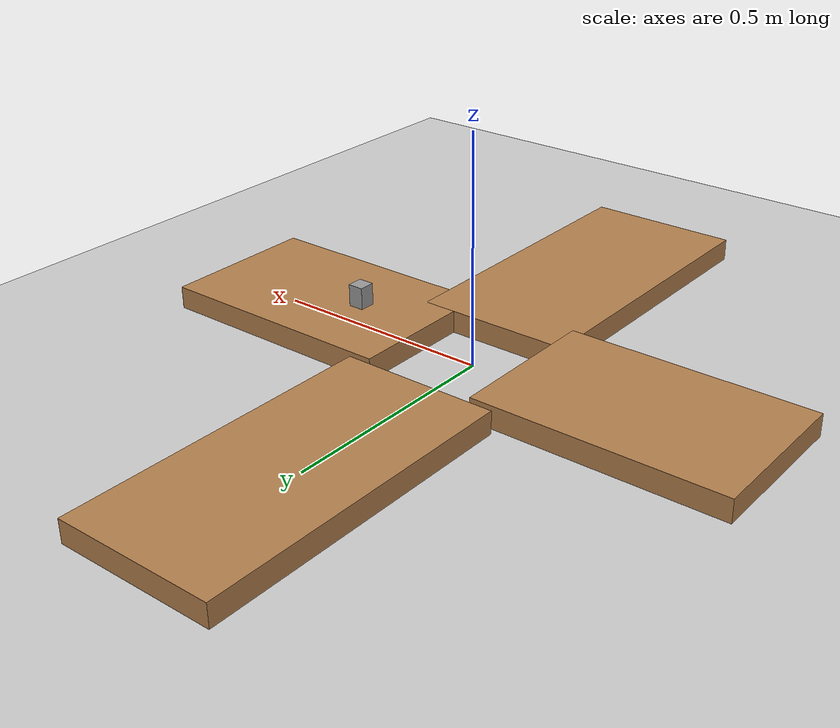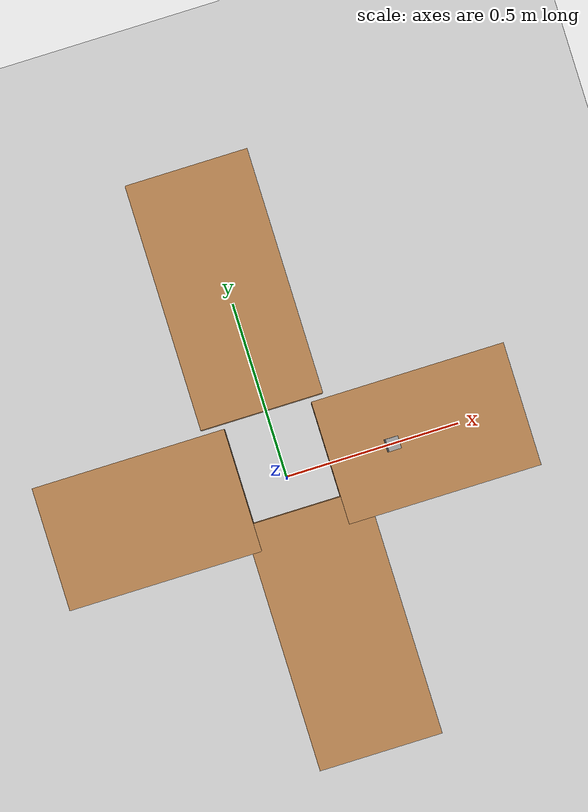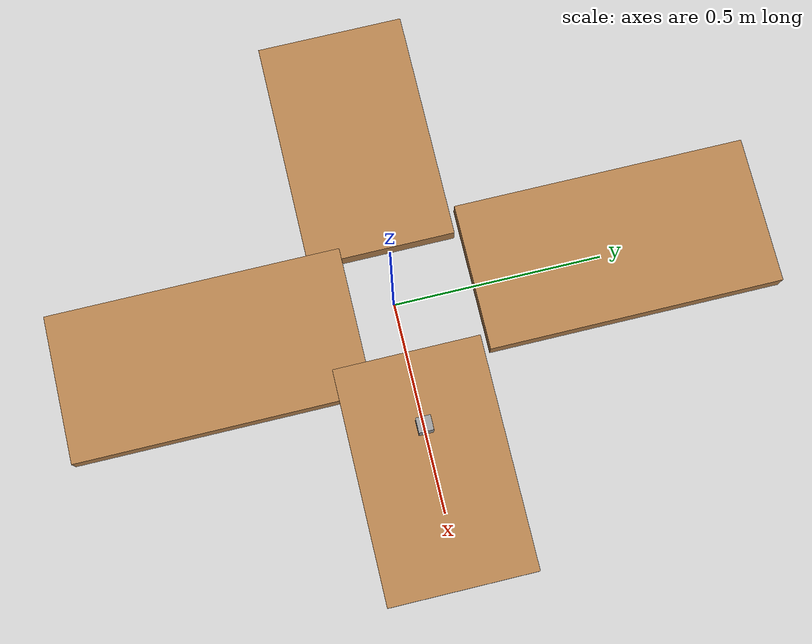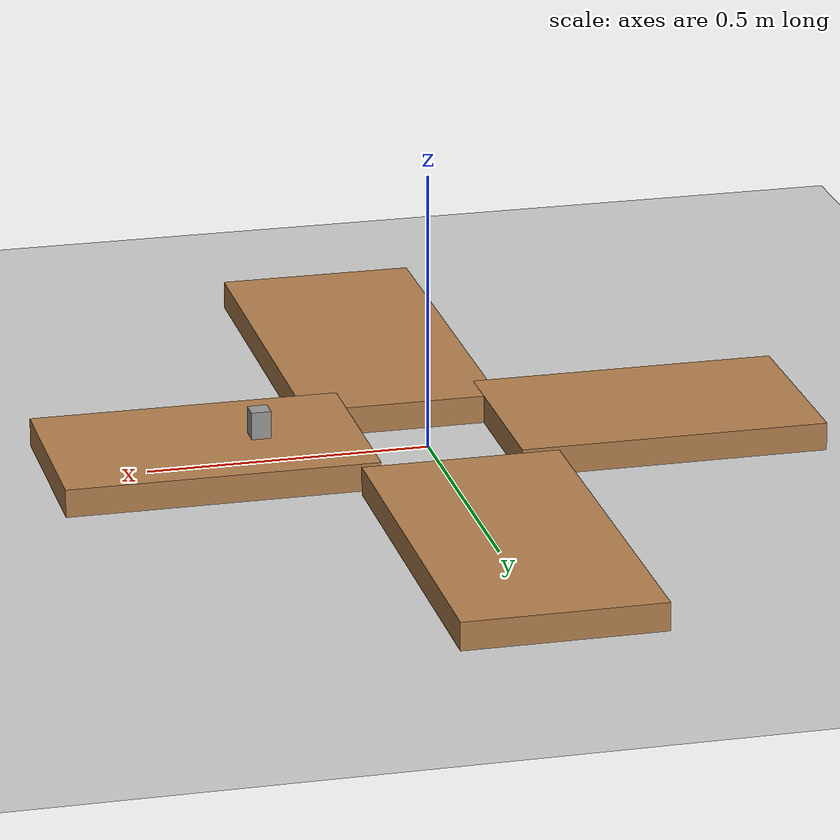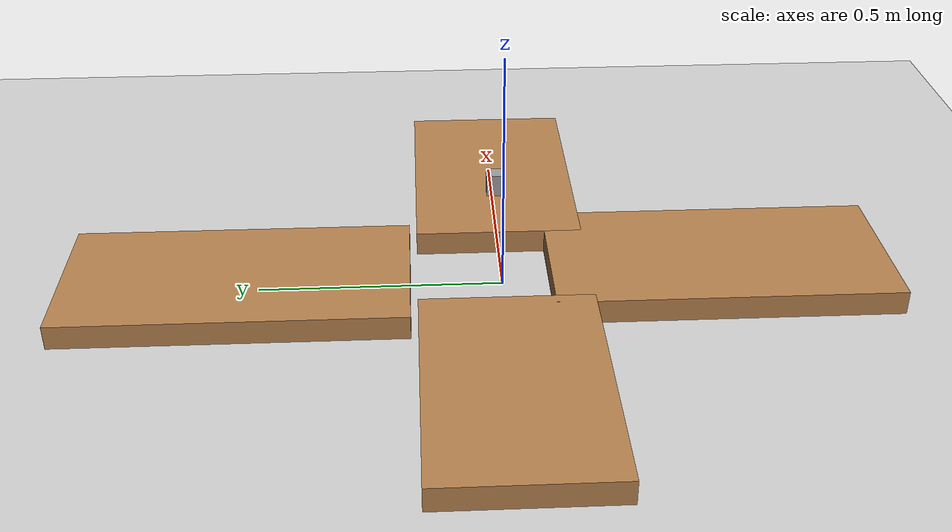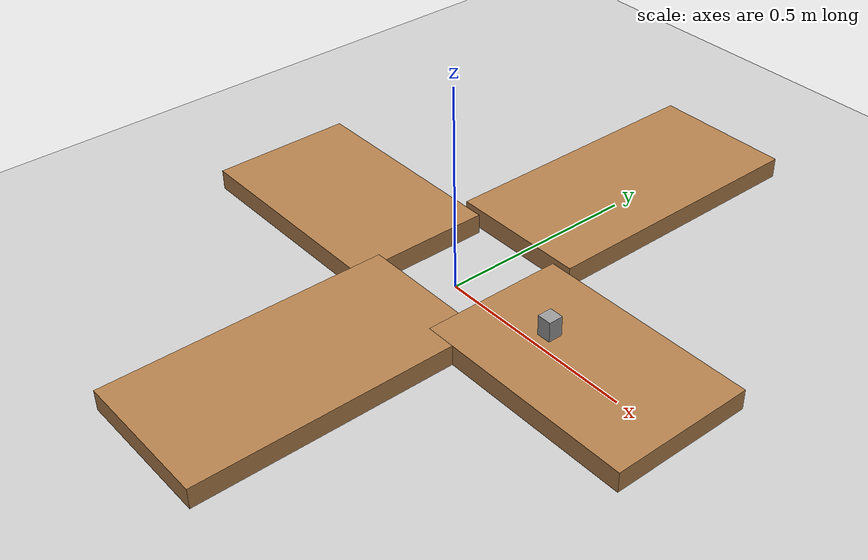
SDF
<sdf version="1.7">
 <world name="default">
  <light name="sun" type="directional">
   <pose>0 0 10 0 -0 0</pose>
   <diffuse>0.8 0.8 0.8 1</diffuse>
   <specular>0.2 0.2 0.2 1</specular>
   <attenuation>
    <range>1000</range>
    <constant>0.9</constant>
    <linear>0.01</linear>
    <quadratic>0.001</quadratic>
   </attenuation>
   <direction>-0.5 0.1 -0.9</direction>
   <spot><inner_angle>0</inner_angle><outer_angle>0</outer_angle><falloff>0</falloff></spot>
  </light>
  <model name="ground_plane">
   <static>1</static>
   <link name="link">
    <collision name="collision">
     <geometry><plane><normal>0 0 1</normal><size>100 100</size></plane></geometry>
     <surface>
      <contact><collide_bitmask>65535</collide_bitmask></contact>
      <friction><ode><mu>100</mu><mu2>50</mu2></ode></friction>
     </surface>
    </collision>
    <visual name="visual">
     <cast_shadows>0</cast_shadows>
     <geometry><plane><normal>0 0 1</normal><size>100 100</size></plane></geometry>
     <material>
      <script><uri>file://media/materials/scripts/gazebo.material</uri><name>Gazebo/Grey</name></script>
     </material>
    </visual>
   </link>
  </model>
  <physics type="ode">
   <real_time_update_rate>1000</real_time_update_rate>
   <max_step_size>0.001</max_step_size>
   <real_time_factor>1</real_time_factor>
   <ode>
    <solver>
     <type>quick</type>
     <iters>150</iters>
     <precon_iters>0</precon_iters>
     <sor>1.4</sor>
     <use_dynamic_moi_rescaling>1</use_dynamic_moi_rescaling>
    </solver>
    <constraints>
     <cfm>1e-05</cfm>
     <erp>0.2</erp>
     <contact_max_correcting_vel>2000</contact_max_correcting_vel>
     <contact_surface_layer>0.01</contact_surface_layer>
    </constraints>
   </ode>
  </physics>
  <scene><ambient>0.4 0.4 0.4 1</ambient><background>0.7 0.7 0.7 1</background><shadows>1</shadows></scene>
  <gravity>0 0 -9.8</gravity>
  <magnetic_field>6e-06 2.3e-05 -4.2e-05</magnetic_field>
  <atmosphere type="adiabatic"/>
  <spherical_coordinates>
   <surface_model>EARTH_WGS84</surface_model>
   <latitude_deg>0</latitude_deg>
   <longitude_deg>0</longitude_deg>
   <elevation>0</elevation>
   <heading_deg>0</heading_deg>
  </spherical_coordinates>
  <model name="first">
   <pose>0 0.04705 0 0 -0 0</pose>
   <link name="Wall_0">
    <collision name="Wall_0_Collision">
     <geometry><box><size>0.55 0.35 0.05</size></box></geometry>
     <pose>0 0 0.025 0 -0 0</pose>
    </collision>
    <visual name="Wall_0_Visual">
     <pose>0 0 0.025 0 -0 0</pose>
     <geometry><box><size>0.55 0.35 0.05</size></box></geometry>
     <material>
      <script><uri>file://media/materials/scripts/gazebo.material</uri><name>Gazebo/Wood</name></script>
      <ambient>1 1 1 1</ambient>
     </material>
     <meta><layer>0</layer></meta>
    </visual>
    <pose>0.4 -0.04705 0 0 -0 0</pose>
   </link>
   <link name="Wall_5">
    <collision name="Wall_5_Collision">
     <geometry><box><size>0.55 0.35 0.05</size></box></geometry>
     <pose>0 0 0.025 0 -0 0</pose>
    </collision>
    <visual name="Wall_5_Visual">
     <pose>0 0 0.025 0 -0 0</pose>
     <geometry><box><size>0.55 0.35 0.05</size></box></geometry>
     <material>
      <script><uri>file://media/materials/scripts/gazebo.material</uri><name>Gazebo/Wood</name></script>
      <ambient>1 1 1 1</ambient>
     </material>
     <meta><layer>0</layer></meta>
    </visual>
    <pose>-0.4 -0.04705 0 0 -0 3.14159</pose>
   </link>
   <link name="Wall_7">
    <collision name="Wall_7_Collision">
     <geometry><box><size>0.700201 0.35 0.05</size></box></geometry>
     <pose>0 0 0.025 0 -0 0</pose>
    </collision>
    <visual name="Wall_7_Visual">
     <pose>0 0 0.025 0 -0 0</pose>
     <geometry><box><size>0.700201 0.35 0.05</size></box></geometry>
     <material>
      <script><uri>file://media/materials/scripts/gazebo.material</uri><name>Gazebo/Wood</name></script>
      <ambient>1 1 1 1</ambient>
     </material>
     <meta><layer>0</layer></meta>
    </visual>
    <pose>-0.012 0.49295 0 0 -0 1.5708</pose>
   </link>
   <link name="Wall_9">
    <collision name="Wall_9_Collision">
     <geometry><box><size>0.7 0.35 0.05</size></box></geometry>
     <pose>0 0 0.025 0 -0 0</pose>
    </collision>
    <visual name="Wall_9_Visual">
     <pose>0 0 0.025 0 -0 0</pose>
     <geometry><box><size>0.7 0.35 0.05</size></box></geometry>
     <material>
      <script><uri>file://media/materials/scripts/gazebo.material</uri><name>Gazebo/Wood</name></script>
      <ambient>1 1 1 1</ambient>
     </material>
     <meta><layer>0</layer></meta>
    </visual>
    <pose>0.024 -0.49305 0 0 -0 -1.5708</pose>
   </link>
   <static>1</static>
  </model>
  <model name="3rd">
   <link name="link_0">
    <inertial>
     <mass>0.3</mass>
     <inertia>
      <ixx>9.313e-05</ixx>
      <ixy>0</ixy>
      <ixz>0</ixz>
      <iyy>9.313e-05</iyy>
      <iyz>0</iyz>
      <izz>6.125e-05</izz>
     </inertia>
    </inertial>
    <visual name="visual">
     <geometry><box><size>0.035 0.035 0.05</size></box></geometry>
     <material>
      <lighting>1</lighting>
      <script><uri>file://media/materials/scripts/gazebo.material</uri><name>Gazebo/Grey</name></script>
      <shader type="pixel"><normal_map>__default__</normal_map></shader>
      <ambient>0.3 0.3 0.3 1</ambient>
      <diffuse>0.7 0.7 0.7 1</diffuse>
      <specular>0.01 0.01 0.01 1</specular>
      <emissive>0 0 0 1</emissive>
     </material>
    </visual>
    <collision name="collision">
     <geometry><box><size>0.035 0.035 0.05</size></box></geometry>
     <surface>
      <friction>
       <ode><mu>1</mu><mu2>1</mu2><fdir1>0 0 0</fdir1><slip1>0</slip1><slip2>0</slip2></ode>
       <torsional>
        <coefficient>1</coefficient>
        <patch_radius>0</patch_radius>
        <surface_radius>0</surface_radius>
        <use_patch_radius>1</use_patch_radius>
        <ode><slip>0</slip></ode>
       </torsional>
      </friction>
      <bounce><restitution_coefficient>0</restitution_coefficient><threshold>1e+06</threshold></bounce>
      <contact>
       <collide_without_contact>0</collide_without_contact>
       <collide_without_contact_bitmask>1</collide_without_contact_bitmask>
       <collide_bitmask>1</collide_bitmask>
       <ode>
        <soft_cfm>0</soft_cfm>
        <soft_erp>0.2</soft_erp>
        <kp>1e+13</kp>
        <kd>1</kd>
        <max_vel>0.01</max_vel>
        <min_depth>0</min_depth>
       </ode>
       <bullet>
        <split_impulse>1</split_impulse>
        <split_impulse_penetration_threshold>-0.01</split_impulse_penetration_threshold>
        <soft_cfm>0</soft_cfm>
        <soft_erp>0.2</soft_erp>
        <kp>1e+13</kp>
        <kd>1</kd>
       </bullet>
      </contact>
     </surface>
    </collision>
   </link>
   <static>0</static>
   <pose>0.301378 -1e-06 0.074273 3.9e-05 -7e-06 2.9e-05</pose>
  </model>
 </world>
</sdf>
